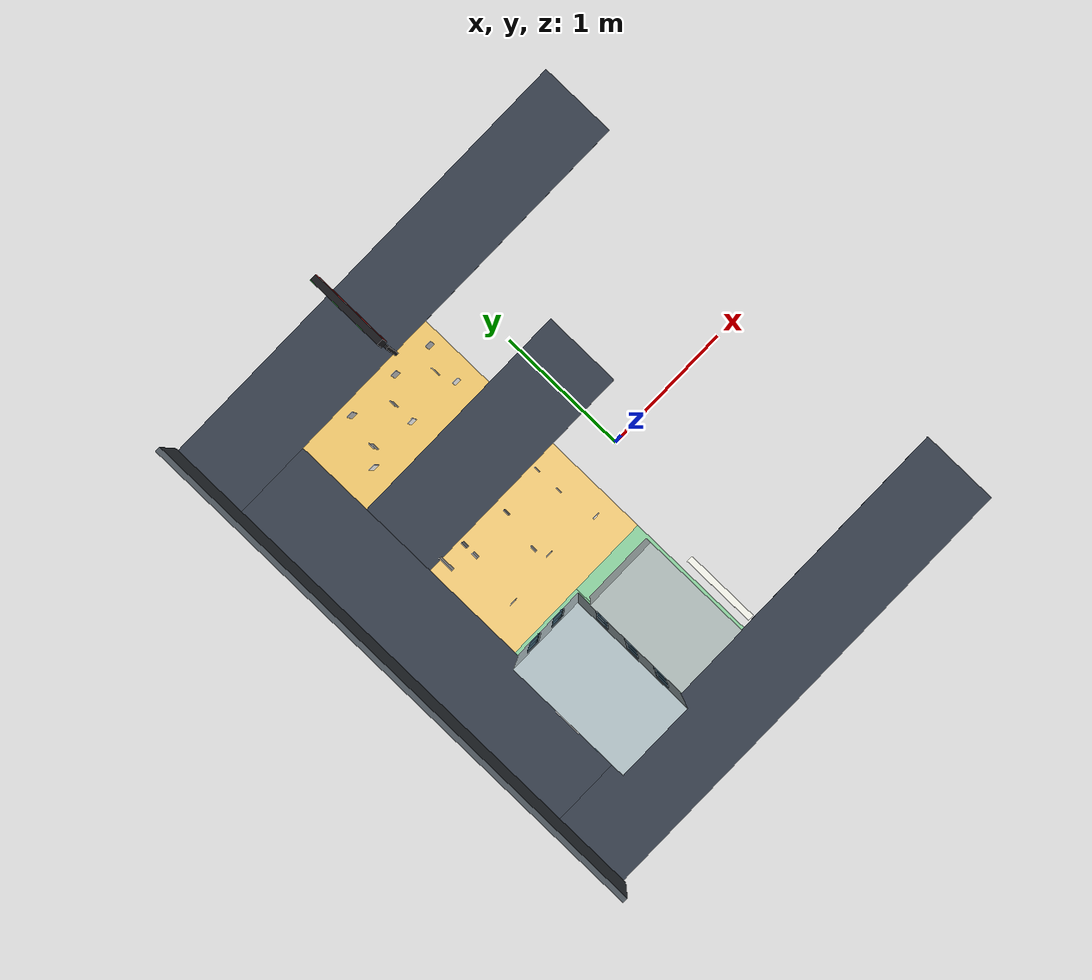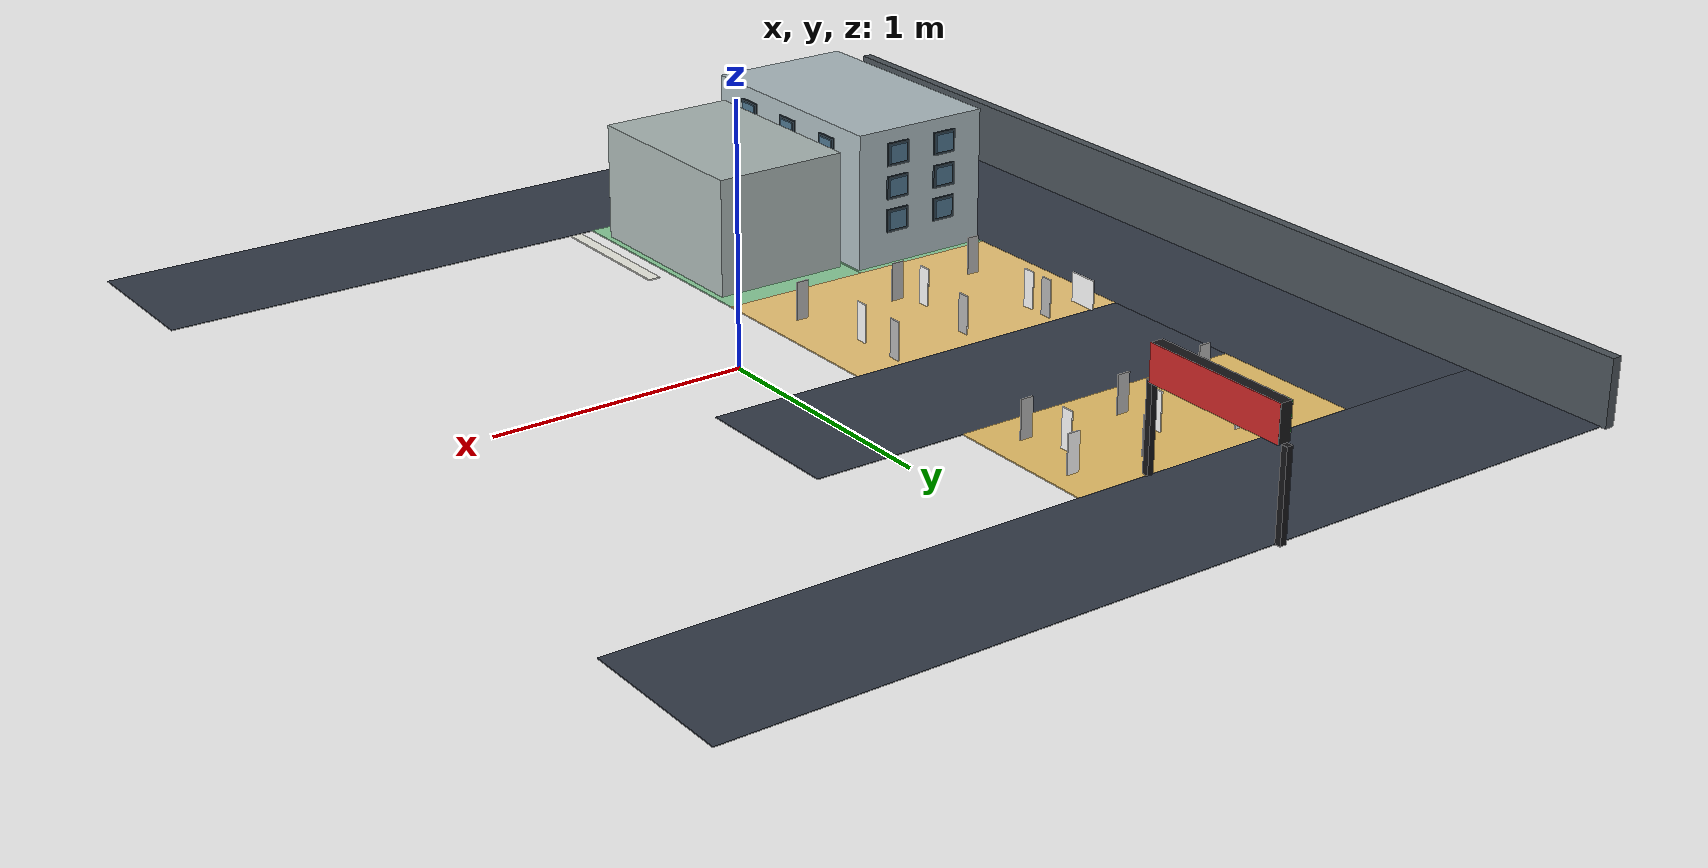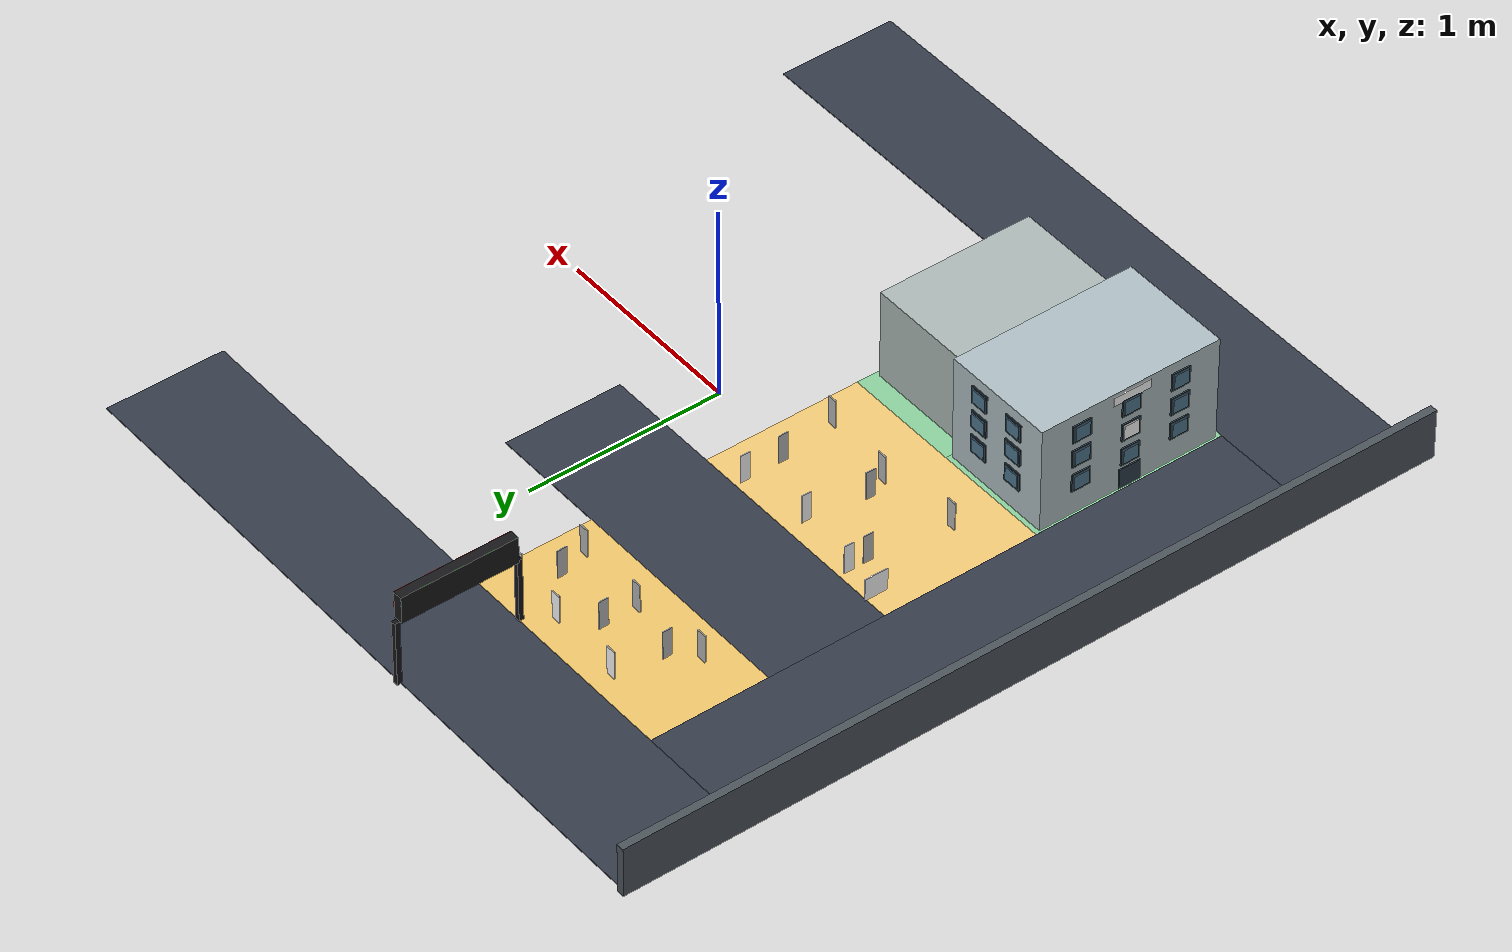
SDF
<sdf version="1.6">
 <world name="sq_community_4p2">
  <include><uri>model://sun</uri></include>
  <model name="sq4_road_top">
   <static>true</static>
   <pose>-0.3000 1.8000 0.0000 0 0 0.00000</pose>
   <link name="surface">
    <visual name="surface_vis">
     <pose>0.0000 0.0000 0.0015 0 0 0.00000</pose>
     <geometry><box><size>3.6000 0.6000 0.0030</size></box></geometry>
     <material>
      <ambient>0.2100 0.2400 0.2900 1.0000</ambient>
      <diffuse>0.2100 0.2400 0.2900 1.0000</diffuse>
     </material>
    </visual>
   </link>
  </model>
  <model name="sq4_road_west">
   <static>true</static>
   <pose>-1.8000 0.0000 0.0000 0 0 0.00000</pose>
   <link name="surface">
    <visual name="surface_vis">
     <pose>0.0000 0.0000 0.0015 0 0 0.00000</pose>
     <geometry><box><size>0.6000 3.0000 0.0030</size></box></geometry>
     <material>
      <ambient>0.2100 0.2400 0.2900 1.0000</ambient>
      <diffuse>0.2100 0.2400 0.2900 1.0000</diffuse>
     </material>
    </visual>
   </link>
  </model>
  <model name="sq4_road_connector">
   <static>true</static>
   <pose>-0.6000 0.6000 0.0000 0 0 0.00000</pose>
   <link name="surface">
    <visual name="surface_vis">
     <pose>0.0000 0.0000 0.0015 0 0 0.00000</pose>
     <geometry><box><size>1.8000 0.6000 0.0030</size></box></geometry>
     <material>
      <ambient>0.2100 0.2400 0.2900 1.0000</ambient>
      <diffuse>0.2100 0.2400 0.2900 1.0000</diffuse>
     </material>
    </visual>
   </link>
  </model>
  <model name="sq4_road_bottom">
   <static>true</static>
   <pose>-0.3000 -1.8000 0.0000 0 0 0.00000</pose>
   <link name="surface">
    <visual name="surface_vis">
     <pose>0.0000 0.0000 0.0015 0 0 0.00000</pose>
     <geometry><box><size>3.6000 0.6000 0.0030</size></box></geometry>
     <material>
      <ambient>0.2100 0.2400 0.2900 1.0000</ambient>
      <diffuse>0.2100 0.2400 0.2900 1.0000</diffuse>
     </material>
    </visual>
   </link>
  </model>
  <model name="sq4_zone_a_people">
   <static>true</static>
   <pose>-0.9000 1.2000 0.0000 0 0 0.00000</pose>
   <link name="surface">
    <visual name="surface_vis">
     <pose>0.0000 0.0000 0.0018 0 0 0.00000</pose>
     <geometry><box><size>1.2000 0.6000 0.0035</size></box></geometry>
     <material>
      <ambient>0.9400 0.7800 0.4200 1.0000</ambient>
      <diffuse>0.9400 0.7800 0.4200 1.0000</diffuse>
     </material>
    </visual>
   </link>
  </model>
  <model name="sq4_zone_b_people">
   <static>true</static>
   <pose>-0.9000 -0.1000 0.0000 0 0 0.00000</pose>
   <link name="surface">
    <visual name="surface_vis">
     <pose>0.0000 0.0000 0.0018 0 0 0.00000</pose>
     <geometry><box><size>1.2000 0.8000 0.0035</size></box></geometry>
     <material>
      <ambient>0.9600 0.8000 0.4700 1.0000</ambient>
      <diffuse>0.9600 0.8000 0.4700 1.0000</diffuse>
     </material>
    </visual>
   </link>
  </model>
  <model name="sq4_zone_building_D">
   <static>true</static>
   <pose>-1.2000 -1.0000 0.0000 0 0 0.00000</pose>
   <link name="surface">
    <visual name="surface_vis">
     <pose>0.0000 0.0000 0.0018 0 0 0.00000</pose>
     <geometry><box><size>0.6000 1.0000 0.0035</size></box></geometry>
     <material>
      <ambient>0.5500 0.8200 0.6200 1.0000</ambient>
      <diffuse>0.5500 0.8200 0.6200 1.0000</diffuse>
     </material>
    </visual>
   </link>
  </model>
  <model name="sq4_zone_station">
   <static>true</static>
   <pose>-0.6000 -1.0000 0.0000 0 0 0.00000</pose>
   <link name="surface">
    <visual name="surface_vis">
     <pose>0.0000 0.0000 0.0018 0 0 0.00000</pose>
     <geometry><box><size>0.6000 1.0000 0.0035</size></box></geometry>
     <material>
      <ambient>0.5500 0.8200 0.6200 1.0000</ambient>
      <diffuse>0.5500 0.8200 0.6200 1.0000</diffuse>
     </material>
    </visual>
   </link>
  </model>
  <model name="sq4_boundary_west">
   <static>true</static>
   <pose>-2.1200 0.0000 0.0000 0 0 0.00000</pose>
   <link name="wall">
    <visual name="wall_vis">
     <pose>0.0000 0.0000 0.1300 0 0 0.00000</pose>
     <geometry><box><size>0.0400 4.2400 0.2600</size></box></geometry>
     <material>
      <ambient>0.3000 0.3300 0.3600 1.0000</ambient>
      <diffuse>0.3000 0.3300 0.3600 1.0000</diffuse>
     </material>
    </visual>
    <collision name="wall_col">
     <pose>0.0000 0.0000 0.1300 0 0 0.00000</pose>
     <geometry><box><size>0.0400 4.2400 0.2600</size></box></geometry>
    </collision>
   </link>
  </model>
  <model name="sq4_crossing_lower_0">
   <static>true</static>
   <pose>-0.2200 -1.2000 0.0000 0 0 0.00000</pose>
   <link name="surface">
    <visual name="surface_vis">
     <pose>0.0000 0.0000 0.0025 0 0 0.00000</pose>
     <geometry><box><size>0.0480 0.5800 0.0050</size></box></geometry>
     <material>
      <ambient>0.9600 0.9600 0.9200 1.0000</ambient>
      <diffuse>0.9600 0.9600 0.9200 1.0000</diffuse>
     </material>
    </visual>
   </link>
  </model>
  <model name="sq4_person_01">
   <static>true</static>
   <pose>-1.25000 1.05000 .004 0 0 1.57079633</pose>
   <link name="panel">
    <visual name="backing">
     <pose>-.0001 0 .075 0 0 0</pose>
     <geometry><box><size>.0048 .05 .15</size></box></geometry>
     <material>
      <lighting>false</lighting>
      <ambient>1 1 1 1</ambient>
      <diffuse>1 1 1 1</diffuse>
      <emissive>1 1 1 1</emissive>
     </material>
    </visual>
    <visual name="portrait">
     <pose>.0024 0 .075 0 0 0</pose>
     <geometry><box><size>.0002 .05 .15</size></box></geometry>
     <material>
      <script>
       <uri>model://sq_competition_assets/materials/scripts</uri>
       <uri>model://sq_competition_assets/materials/textures</uri>
       <name>SQ4_Person_01</name>
      </script>
     </material>
    </visual>
    <collision name="panel_collision">
     <pose>0 0 .075 0 0 0</pose>
     <geometry><box><size>.005 .05 .15</size></box></geometry>
    </collision>
   </link>
  </model>
  <model name="sq4_person_02">
   <static>true</static>
   <pose>-0.85000 1.08000 .004 0 0 1.57079633</pose>
   <link name="panel">
    <visual name="backing">
     <pose>-.0001 0 .075 0 0 0</pose>
     <geometry><box><size>.0048 .05 .15</size></box></geometry>
     <material>
      <lighting>false</lighting>
      <ambient>1 1 1 1</ambient>
      <diffuse>1 1 1 1</diffuse>
      <emissive>1 1 1 1</emissive>
     </material>
    </visual>
    <visual name="portrait">
     <pose>.0024 0 .075 0 0 0</pose>
     <geometry><box><size>.0002 .05 .15</size></box></geometry>
     <material>
      <script>
       <uri>model://sq_competition_assets/materials/scripts</uri>
       <uri>model://sq_competition_assets/materials/textures</uri>
       <name>SQ4_Person_02</name>
      </script>
     </material>
    </visual>
    <collision name="panel_collision">
     <pose>0 0 .075 0 0 0</pose>
     <geometry><box><size>.005 .05 .15</size></box></geometry>
    </collision>
   </link>
  </model>
  <model name="sq4_person_03">
   <static>true</static>
   <pose>-0.45000 1.05000 .004 0 0 1.57079633</pose>
   <link name="panel">
    <visual name="backing">
     <pose>-.0001 0 .075 0 0 0</pose>
     <geometry><box><size>.0048 .05 .15</size></box></geometry>
     <material>
      <lighting>false</lighting>
      <ambient>1 1 1 1</ambient>
      <diffuse>1 1 1 1</diffuse>
      <emissive>1 1 1 1</emissive>
     </material>
    </visual>
    <visual name="portrait">
     <pose>.0024 0 .075 0 0 0</pose>
     <geometry><box><size>.0002 .05 .15</size></box></geometry>
     <material>
      <script>
       <uri>model://sq_competition_assets/materials/scripts</uri>
       <uri>model://sq_competition_assets/materials/textures</uri>
       <name>SQ4_Person_03</name>
      </script>
     </material>
    </visual>
    <collision name="panel_collision">
     <pose>0 0 .075 0 0 0</pose>
     <geometry><box><size>.005 .05 .15</size></box></geometry>
    </collision>
   </link>
  </model>
  <model name="sq4_person_04">
   <static>true</static>
   <pose>-1.10000 1.40000 .004 0 0 4.71238898</pose>
   <link name="panel">
    <visual name="backing">
     <pose>-.0001 0 .075 0 0 0</pose>
     <geometry><box><size>.0048 .05 .15</size></box></geometry>
     <material>
      <lighting>false</lighting>
      <ambient>1 1 1 1</ambient>
      <diffuse>1 1 1 1</diffuse>
      <emissive>1 1 1 1</emissive>
     </material>
    </visual>
    <visual name="portrait">
     <pose>.0024 0 .075 0 0 0</pose>
     <geometry><box><size>.0002 .05 .15</size></box></geometry>
     <material>
      <script>
       <uri>model://sq_competition_assets/materials/scripts</uri>
       <uri>model://sq_competition_assets/materials/textures</uri>
       <name>SQ4_Person_04</name>
      </script>
     </material>
    </visual>
    <collision name="panel_collision">
     <pose>0 0 .075 0 0 0</pose>
     <geometry><box><size>.005 .05 .15</size></box></geometry>
    </collision>
   </link>
  </model>
  <model name="sq4_person_05">
   <static>true</static>
   <pose>-0.70000 1.38000 .004 0 0 4.71238898</pose>
   <link name="panel">
    <visual name="backing">
     <pose>-.0001 0 .075 0 0 0</pose>
     <geometry><box><size>.0048 .05 .15</size></box></geometry>
     <material>
      <lighting>false</lighting>
      <ambient>1 1 1 1</ambient>
      <diffuse>1 1 1 1</diffuse>
      <emissive>1 1 1 1</emissive>
     </material>
    </visual>
    <visual name="portrait">
     <pose>.0024 0 .075 0 0 0</pose>
     <geometry><box><size>.0002 .05 .15</size></box></geometry>
     <material>
      <script>
       <uri>model://sq_competition_assets/materials/scripts</uri>
       <uri>model://sq_competition_assets/materials/textures</uri>
       <name>SQ4_Person_05</name>
      </script>
     </material>
    </visual>
    <collision name="panel_collision">
     <pose>0 0 .075 0 0 0</pose>
     <geometry><box><size>.005 .05 .15</size></box></geometry>
    </collision>
   </link>
  </model>
  <model name="sq4_person_06">
   <static>true</static>
   <pose>-0.40000 1.35000 .004 0 0 4.71238898</pose>
   <link name="panel">
    <visual name="backing">
     <pose>-.0001 0 .075 0 0 0</pose>
     <geometry><box><size>.0048 .05 .15</size></box></geometry>
     <material>
      <lighting>false</lighting>
      <ambient>1 1 1 1</ambient>
      <diffuse>1 1 1 1</diffuse>
      <emissive>1 1 1 1</emissive>
     </material>
    </visual>
    <visual name="portrait">
     <pose>.0024 0 .075 0 0 0</pose>
     <geometry><box><size>.0002 .05 .15</size></box></geometry>
     <material>
      <script>
       <uri>model://sq_competition_assets/materials/scripts</uri>
       <uri>model://sq_competition_assets/materials/textures</uri>
       <name>SQ4_Person_06</name>
      </script>
     </material>
    </visual>
    <collision name="panel_collision">
     <pose>0 0 .075 0 0 0</pose>
     <geometry><box><size>.005 .05 .15</size></box></geometry>
    </collision>
   </link>
  </model>
  <model name="sq4_person_07">
   <static>true</static>
   <pose>-1.15000 1.15000 .004 0 0 3.14159265</pose>
   <link name="panel">
    <visual name="backing">
     <pose>-.0001 0 .075 0 0 0</pose>
     <geometry><box><size>.0048 .05 .15</size></box></geometry>
     <material>
      <lighting>false</lighting>
      <ambient>1 1 1 1</ambient>
      <diffuse>1 1 1 1</diffuse>
      <emissive>1 1 1 1</emissive>
     </material>
    </visual>
    <visual name="portrait">
     <pose>.0024 0 .075 0 0 0</pose>
     <geometry><box><size>.0002 .05 .15</size></box></geometry>
     <material>
      <script>
       <uri>model://sq_competition_assets/materials/scripts</uri>
       <uri>model://sq_competition_assets/materials/textures</uri>
       <name>SQ4_Person_07</name>
      </script>
     </material>
    </visual>
    <collision name="panel_collision">
     <pose>0 0 .075 0 0 0</pose>
     <geometry><box><size>.005 .05 .15</size></box></geometry>
    </collision>
   </link>
  </model>
  <model name="sq4_person_08">
   <static>true</static>
   <pose>-0.85000 1.25000 .004 0 0 3.14159265</pose>
   <link name="panel">
    <visual name="backing">
     <pose>-.0001 0 .075 0 0 0</pose>
     <geometry><box><size>.0048 .05 .15</size></box></geometry>
     <material>
      <lighting>false</lighting>
      <ambient>1 1 1 1</ambient>
      <diffuse>1 1 1 1</diffuse>
      <emissive>1 1 1 1</emissive>
     </material>
    </visual>
    <visual name="portrait">
     <pose>.0024 0 .075 0 0 0</pose>
     <geometry><box><size>.0002 .05 .15</size></box></geometry>
     <material>
      <script>
       <uri>model://sq_competition_assets/materials/scripts</uri>
       <uri>model://sq_competition_assets/materials/textures</uri>
       <name>SQ4_Person_08</name>
      </script>
     </material>
    </visual>
    <collision name="panel_collision">
     <pose>0 0 .075 0 0 0</pose>
     <geometry><box><size>.005 .05 .15</size></box></geometry>
    </collision>
   </link>
  </model>
  <model name="sq4_person_09">
   <static>true</static>
   <pose>-0.50000 1.20000 .004 0 0 3.14159265</pose>
   <link name="panel">
    <visual name="backing">
     <pose>-.0001 0 .075 0 0 0</pose>
     <geometry><box><size>.0048 .05 .15</size></box></geometry>
     <material>
      <lighting>false</lighting>
      <ambient>1 1 1 1</ambient>
      <diffuse>1 1 1 1</diffuse>
      <emissive>1 1 1 1</emissive>
     </material>
    </visual>
    <visual name="portrait">
     <pose>.0024 0 .075 0 0 0</pose>
     <geometry><box><size>.0002 .05 .15</size></box></geometry>
     <material>
      <script>
       <uri>model://sq_competition_assets/materials/scripts</uri>
       <uri>model://sq_competition_assets/materials/textures</uri>
       <name>SQ4_Person_09</name>
      </script>
     </material>
    </visual>
    <collision name="panel_collision">
     <pose>0 0 .075 0 0 0</pose>
     <geometry><box><size>.005 .05 .15</size></box></geometry>
    </collision>
   </link>
  </model>
  <model name="sq4_person_10">
   <static>true</static>
   <pose>-1.25000 -0.25000 .004 0 0 1.57079633</pose>
   <link name="panel">
    <visual name="backing">
     <pose>-.0001 0 .075 0 0 0</pose>
     <geometry><box><size>.0048 .05 .15</size></box></geometry>
     <material>
      <lighting>false</lighting>
      <ambient>1 1 1 1</ambient>
      <diffuse>1 1 1 1</diffuse>
      <emissive>1 1 1 1</emissive>
     </material>
    </visual>
    <visual name="portrait">
     <pose>.0024 0 .075 0 0 0</pose>
     <geometry><box><size>.0002 .05 .15</size></box></geometry>
     <material>
      <script>
       <uri>model://sq_competition_assets/materials/scripts</uri>
       <uri>model://sq_competition_assets/materials/textures</uri>
       <name>SQ4_Person_10</name>
      </script>
     </material>
    </visual>
    <collision name="panel_collision">
     <pose>0 0 .075 0 0 0</pose>
     <geometry><box><size>.005 .05 .15</size></box></geometry>
    </collision>
   </link>
  </model>
  <model name="sq4_person_11">
   <static>true</static>
   <pose>-0.85000 -0.20000 .004 0 0 1.57079633</pose>
   <link name="panel">
    <visual name="backing">
     <pose>-.0001 0 .075 0 0 0</pose>
     <geometry><box><size>.0048 .05 .15</size></box></geometry>
     <material>
      <lighting>false</lighting>
      <ambient>1 1 1 1</ambient>
      <diffuse>1 1 1 1</diffuse>
      <emissive>1 1 1 1</emissive>
     </material>
    </visual>
    <visual name="portrait">
     <pose>.0024 0 .075 0 0 0</pose>
     <geometry><box><size>.0002 .05 .15</size></box></geometry>
     <material>
      <script>
       <uri>model://sq_competition_assets/materials/scripts</uri>
       <uri>model://sq_competition_assets/materials/textures</uri>
       <name>SQ4_Person_11</name>
      </script>
     </material>
    </visual>
    <collision name="panel_collision">
     <pose>0 0 .075 0 0 0</pose>
     <geometry><box><size>.005 .05 .15</size></box></geometry>
    </collision>
   </link>
  </model>
  <model name="sq4_person_12">
   <static>true</static>
   <pose>-0.45000 -0.25000 .004 0 0 1.57079633</pose>
   <link name="panel">
    <visual name="backing">
     <pose>-.0001 0 .075 0 0 0</pose>
     <geometry><box><size>.0048 .05 .15</size></box></geometry>
     <material>
      <lighting>false</lighting>
      <ambient>1 1 1 1</ambient>
      <diffuse>1 1 1 1</diffuse>
      <emissive>1 1 1 1</emissive>
     </material>
    </visual>
    <visual name="portrait">
     <pose>.0024 0 .075 0 0 0</pose>
     <geometry><box><size>.0002 .05 .15</size></box></geometry>
     <material>
      <script>
       <uri>model://sq_competition_assets/materials/scripts</uri>
       <uri>model://sq_competition_assets/materials/textures</uri>
       <name>SQ4_Person_12</name>
      </script>
     </material>
    </visual>
    <collision name="panel_collision">
     <pose>0 0 .075 0 0 0</pose>
     <geometry><box><size>.005 .05 .15</size></box></geometry>
    </collision>
   </link>
  </model>
  <model name="sq4_person_13">
   <static>true</static>
   <pose>-1.20000 0.15000 .004 0 0 3.14159265</pose>
   <link name="panel">
    <visual name="backing">
     <pose>-.0001 0 .075 0 0 0</pose>
     <geometry><box><size>.0048 .05 .15</size></box></geometry>
     <material>
      <lighting>false</lighting>
      <ambient>1 1 1 1</ambient>
      <diffuse>1 1 1 1</diffuse>
      <emissive>1 1 1 1</emissive>
     </material>
    </visual>
    <visual name="portrait">
     <pose>.0024 0 .075 0 0 0</pose>
     <geometry><box><size>.0002 .05 .15</size></box></geometry>
     <material>
      <script>
       <uri>model://sq_competition_assets/materials/scripts</uri>
       <uri>model://sq_competition_assets/materials/textures</uri>
       <name>SQ4_Person_13</name>
      </script>
     </material>
    </visual>
    <collision name="panel_collision">
     <pose>0 0 .075 0 0 0</pose>
     <geometry><box><size>.005 .05 .15</size></box></geometry>
    </collision>
   </link>
  </model>
  <model name="sq4_person_14">
   <static>true</static>
   <pose>-0.90000 -0.10000 .004 0 0 3.14159265</pose>
   <link name="panel">
    <visual name="backing">
     <pose>-.0001 0 .075 0 0 0</pose>
     <geometry><box><size>.0048 .05 .15</size></box></geometry>
     <material>
      <lighting>false</lighting>
      <ambient>1 1 1 1</ambient>
      <diffuse>1 1 1 1</diffuse>
      <emissive>1 1 1 1</emissive>
     </material>
    </visual>
    <visual name="portrait">
     <pose>.0024 0 .075 0 0 0</pose>
     <geometry><box><size>.0002 .05 .15</size></box></geometry>
     <material>
      <script>
       <uri>model://sq_competition_assets/materials/scripts</uri>
       <uri>model://sq_competition_assets/materials/textures</uri>
       <name>SQ4_Person_14</name>
      </script>
     </material>
    </visual>
    <collision name="panel_collision">
     <pose>0 0 .075 0 0 0</pose>
     <geometry><box><size>.005 .05 .15</size></box></geometry>
    </collision>
   </link>
  </model>
  <model name="sq4_person_15">
   <static>true</static>
   <pose>-0.50000 0.05000 .004 0 0 3.14159265</pose>
   <link name="panel">
    <visual name="backing">
     <pose>-.0001 0 .075 0 0 0</pose>
     <geometry><box><size>.0048 .05 .15</size></box></geometry>
     <material>
      <lighting>false</lighting>
      <ambient>1 1 1 1</ambient>
      <diffuse>1 1 1 1</diffuse>
      <emissive>1 1 1 1</emissive>
     </material>
    </visual>
    <visual name="portrait">
     <pose>.0024 0 .075 0 0 0</pose>
     <geometry><box><size>.0002 .05 .15</size></box></geometry>
     <material>
      <script>
       <uri>model://sq_competition_assets/materials/scripts</uri>
       <uri>model://sq_competition_assets/materials/textures</uri>
       <name>SQ4_Person_15</name>
      </script>
     </material>
    </visual>
    <collision name="panel_collision">
     <pose>0 0 .075 0 0 0</pose>
     <geometry><box><size>.005 .05 .15</size></box></geometry>
    </collision>
   </link>
  </model>
  <model name="sq4_person_16">
   <static>true</static>
   <pose>-1.20000 0.25000 .004 0 0 0.00000000</pose>
   <link name="panel">
    <visual name="backing">
     <pose>-.0001 0 .075 0 0 0</pose>
     <geometry><box><size>.0048 .05 .15</size></box></geometry>
     <material>
      <lighting>false</lighting>
      <ambient>1 1 1 1</ambient>
      <diffuse>1 1 1 1</diffuse>
      <emissive>1 1 1 1</emissive>
     </material>
    </visual>
    <visual name="portrait">
     <pose>.0024 0 .075 0 0 0</pose>
     <geometry><box><size>.0002 .05 .15</size></box></geometry>
     <material>
      <script>
       <uri>model://sq_competition_assets/materials/scripts</uri>
       <uri>model://sq_competition_assets/materials/textures</uri>
       <name>SQ4_Person_16</name>
      </script>
     </material>
    </visual>
    <collision name="panel_collision">
     <pose>0 0 .075 0 0 0</pose>
     <geometry><box><size>.005 .05 .15</size></box></geometry>
    </collision>
   </link>
  </model>
  <model name="sq4_person_17">
   <static>true</static>
   <pose>-0.85000 0.20000 .004 0 0 0.00000000</pose>
   <link name="panel">
    <visual name="backing">
     <pose>-.0001 0 .075 0 0 0</pose>
     <geometry><box><size>.0048 .05 .15</size></box></geometry>
     <material>
      <lighting>false</lighting>
      <ambient>1 1 1 1</ambient>
      <diffuse>1 1 1 1</diffuse>
      <emissive>1 1 1 1</emissive>
     </material>
    </visual>
    <visual name="portrait">
     <pose>.0024 0 .075 0 0 0</pose>
     <geometry><box><size>.0002 .05 .15</size></box></geometry>
     <material>
      <script>
       <uri>model://sq_competition_assets/materials/scripts</uri>
       <uri>model://sq_competition_assets/materials/textures</uri>
       <name>SQ4_Person_17</name>
      </script>
     </material>
    </visual>
    <collision name="panel_collision">
     <pose>0 0 .075 0 0 0</pose>
     <geometry><box><size>.005 .05 .15</size></box></geometry>
    </collision>
   </link>
  </model>
  <model name="sq4_person_18">
   <static>true</static>
   <pose>-0.50000 0.25000 .004 0 0 0.00000000</pose>
   <link name="panel">
    <visual name="backing">
     <pose>-.0001 0 .075 0 0 0</pose>
     <geometry><box><size>.0048 .05 .15</size></box></geometry>
     <material>
      <lighting>false</lighting>
      <ambient>1 1 1 1</ambient>
      <diffuse>1 1 1 1</diffuse>
      <emissive>1 1 1 1</emissive>
     </material>
    </visual>
    <visual name="portrait">
     <pose>.0024 0 .075 0 0 0</pose>
     <geometry><box><size>.0002 .05 .15</size></box></geometry>
     <material>
      <script>
       <uri>model://sq_competition_assets/materials/scripts</uri>
       <uri>model://sq_competition_assets/materials/textures</uri>
       <name>SQ4_Person_18</name>
      </script>
     </material>
    </visual>
    <collision name="panel_collision">
     <pose>0 0 .075 0 0 0</pose>
     <geometry><box><size>.005 .05 .15</size></box></geometry>
    </collision>
   </link>
  </model>
  <model name="sq4_building_D">
   <static>true</static>
   <pose>-1.2000 -1.0000 0.0000 0 0 0.00000</pose>
   <link name="structure">
    <visual name="structure_vis">
     <pose>0.0000 0.0000 0.2750 0 0 0.00000</pose>
     <geometry><box><size>0.5800 0.9500 0.5500</size></box></geometry>
     <material>
      <ambient>0.6900 0.7500 0.7700 1.0000</ambient>
      <diffuse>0.6900 0.7500 0.7700 1.0000</diffuse>
     </material>
    </visual>
    <collision name="structure_col">
     <pose>0.0000 0.0000 0.2750 0 0 0.00000</pose>
     <geometry><box><size>0.5800 0.9500 0.5500</size></box></geometry>
    </collision>
   </link>
   <link name="nameplate">
    <visual name="nameplate_vis">
     <pose>-0.2960 0.0000 0.5150 0 0 0.00000</pose>
     <geometry><box><size>0.0050 0.2000 0.0450</size></box></geometry>
     <material>
      <script>
       <uri>model://sq_textures/materials/scripts</uri>
       <uri>model://sq_textures/materials/textures</uri>
       <name>SQ_bldg_D</name>
      </script>
      <ambient>1 1 1 1</ambient>
      <diffuse>1 1 1 1</diffuse>
     </material>
    </visual>
   </link>
   <link name="entry_door">
    <visual name="entry_door_vis">
     <pose>-0.2960 0.0000 0.0630 0 0 0.00000</pose>
     <geometry><box><size>0.0060 0.1150 0.1050</size></box></geometry>
     <material>
      <ambient>0.1600 0.2300 0.2800 1.0000</ambient>
      <diffuse>0.1600 0.2300 0.2800 1.0000</diffuse>
     </material>
    </visual>
   </link>
   <link name="window_f1_c1_frame">
    <visual name="window_f1_c1_frame_vis">
     <pose>-0.2950 -0.2639 0.1800 0 0 0.00000</pose>
     <geometry><box><size>0.0070 0.1000 0.0930</size></box></geometry>
     <material>
      <ambient>0.1800 0.2400 0.2800 1.0000</ambient>
      <diffuse>0.1800 0.2400 0.2800 1.0000</diffuse>
     </material>
    </visual>
   </link>
   <link name="window_f1_c1_glass">
    <visual name="window_f1_c1_glass_vis">
     <pose>-0.2990 -0.2639 0.1800 0 0 0.00000</pose>
     <geometry><box><size>0.0070 0.0780 0.0720</size></box></geometry>
     <material>
      <ambient>0.3100 0.4700 0.5700 1.0000</ambient>
      <diffuse>0.3100 0.4700 0.5700 1.0000</diffuse>
     </material>
    </visual>
   </link>
   <link name="window_f1_c2_frame">
    <visual name="window_f1_c2_frame_vis">
     <pose>-0.2950 0.0000 0.1800 0 0 0.00000</pose>
     <geometry><box><size>0.0070 0.1000 0.0930</size></box></geometry>
     <material>
      <ambient>0.1800 0.2400 0.2800 1.0000</ambient>
      <diffuse>0.1800 0.2400 0.2800 1.0000</diffuse>
     </material>
    </visual>
   </link>
   <link name="window_f1_c2_glass">
    <visual name="window_f1_c2_glass_vis">
     <pose>-0.2990 0.0000 0.1800 0 0 0.00000</pose>
     <geometry><box><size>0.0070 0.0780 0.0720</size></box></geometry>
     <material>
      <ambient>0.3100 0.4700 0.5700 1.0000</ambient>
      <diffuse>0.3100 0.4700 0.5700 1.0000</diffuse>
     </material>
    </visual>
   </link>
   <link name="window_f1_c3_frame">
    <visual name="window_f1_c3_frame_vis">
     <pose>-0.2950 0.2639 0.1800 0 0 0.00000</pose>
     <geometry><box><size>0.0070 0.1000 0.0930</size></box></geometry>
     <material>
      <ambient>0.1800 0.2400 0.2800 1.0000</ambient>
      <diffuse>0.1800 0.2400 0.2800 1.0000</diffuse>
     </material>
    </visual>
   </link>
   <link name="window_f1_c3_glass">
    <visual name="window_f1_c3_glass_vis">
     <pose>-0.2990 0.2639 0.1800 0 0 0.00000</pose>
     <geometry><box><size>0.0070 0.0780 0.0720</size></box></geometry>
     <material>
      <ambient>0.3100 0.4700 0.5700 1.0000</ambient>
      <diffuse>0.3100 0.4700 0.5700 1.0000</diffuse>
     </material>
    </visual>
   </link>
   <link name="window_f2_c1_frame">
    <visual name="window_f2_c1_frame_vis">
     <pose>-0.2950 -0.2639 0.3150 0 0 0.00000</pose>
     <geometry><box><size>0.0070 0.1000 0.0930</size></box></geometry>
     <material>
      <ambient>0.1800 0.2400 0.2800 1.0000</ambient>
      <diffuse>0.1800 0.2400 0.2800 1.0000</diffuse>
     </material>
    </visual>
   </link>
   <link name="window_f2_c1_glass">
    <visual name="window_f2_c1_glass_vis">
     <pose>-0.2990 -0.2639 0.3150 0 0 0.00000</pose>
     <geometry><box><size>0.0070 0.0780 0.0720</size></box></geometry>
     <material>
      <ambient>0.3100 0.4700 0.5700 1.0000</ambient>
      <diffuse>0.3100 0.4700 0.5700 1.0000</diffuse>
     </material>
    </visual>
   </link>
   <link name="window_f2_c2_frame">
    <visual name="window_f2_c2_frame_vis">
     <pose>-0.2950 0.0000 0.3150 0 0 0.00000</pose>
     <geometry><box><size>0.0070 0.1000 0.0930</size></box></geometry>
     <material>
      <ambient>0.1800 0.2400 0.2800 1.0000</ambient>
      <diffuse>0.1800 0.2400 0.2800 1.0000</diffuse>
     </material>
    </visual>
   </link>
   <link name="window_f2_c2_glass">
    <visual name="window_f2_c2_glass_vis">
     <pose>-0.2990 0.0000 0.3150 0 0 0.00000</pose>
     <geometry><box><size>0.0070 0.0780 0.0720</size></box></geometry>
     <material>
      <script>
       <uri>model://sq_textures/materials/scripts</uri>
       <uri>model://sq_textures/materials/textures</uri>
       <name>SQ_win_hot</name>
      </script>
      <ambient>1 1 1 1</ambient>
      <diffuse>1 1 1 1</diffuse>
     </material>
    </visual>
   </link>
   <link name="window_f2_c3_frame">
    <visual name="window_f2_c3_frame_vis">
     <pose>-0.2950 0.2639 0.3150 0 0 0.00000</pose>
     <geometry><box><size>0.0070 0.1000 0.0930</size></box></geometry>
     <material>
      <ambient>0.1800 0.2400 0.2800 1.0000</ambient>
      <diffuse>0.1800 0.2400 0.2800 1.0000</diffuse>
     </material>
    </visual>
   </link>
   <link name="window_f2_c3_glass">
    <visual name="window_f2_c3_glass_vis">
     <pose>-0.2990 0.2639 0.3150 0 0 0.00000</pose>
     <geometry><box><size>0.0070 0.0780 0.0720</size></box></geometry>
     <material>
      <ambient>0.3100 0.4700 0.5700 1.0000</ambient>
      <diffuse>0.3100 0.4700 0.5700 1.0000</diffuse>
     </material>
    </visual>
   </link>
   <link name="window_f3_c1_frame">
    <visual name="window_f3_c1_frame_vis">
     <pose>-0.2950 -0.2639 0.4500 0 0 0.00000</pose>
     <geometry><box><size>0.0070 0.1000 0.0930</size></box></geometry>
     <material>
      <ambient>0.1800 0.2400 0.2800 1.0000</ambient>
      <diffuse>0.1800 0.2400 0.2800 1.0000</diffuse>
     </material>
    </visual>
   </link>
   <link name="window_f3_c1_glass">
    <visual name="window_f3_c1_glass_vis">
     <pose>-0.2990 -0.2639 0.4500 0 0 0.00000</pose>
     <geometry><box><size>0.0070 0.0780 0.0720</size></box></geometry>
     <material>
      <ambient>0.3100 0.4700 0.5700 1.0000</ambient>
      <diffuse>0.3100 0.4700 0.5700 1.0000</diffuse>
     </material>
    </visual>
   </link>
   <link name="window_f3_c2_frame">
    <visual name="window_f3_c2_frame_vis">
     <pose>-0.2950 0.0000 0.4500 0 0 0.00000</pose>
     <geometry><box><size>0.0070 0.1000 0.0930</size></box></geometry>
     <material>
      <ambient>0.1800 0.2400 0.2800 1.0000</ambient>
      <diffuse>0.1800 0.2400 0.2800 1.0000</diffuse>
     </material>
    </visual>
   </link>
   <link name="window_f3_c2_glass">
    <visual name="window_f3_c2_glass_vis">
     <pose>-0.2990 0.0000 0.4500 0 0 0.00000</pose>
     <geometry><box><size>0.0070 0.0780 0.0720</size></box></geometry>
     <material>
      <ambient>0.3100 0.4700 0.5700 1.0000</ambient>
      <diffuse>0.3100 0.4700 0.5700 1.0000</diffuse>
     </material>
    </visual>
   </link>
   <link name="window_f3_c3_frame">
    <visual name="window_f3_c3_frame_vis">
     <pose>-0.2950 0.2639 0.4500 0 0 0.00000</pose>
     <geometry><box><size>0.0070 0.1000 0.0930</size></box></geometry>
     <material>
      <ambient>0.1800 0.2400 0.2800 1.0000</ambient>
      <diffuse>0.1800 0.2400 0.2800 1.0000</diffuse>
     </material>
    </visual>
   </link>
   <link name="window_f3_c3_glass">
    <visual name="window_f3_c3_glass_vis">
     <pose>-0.2990 0.2639 0.4500 0 0 0.00000</pose>
     <geometry><box><size>0.0070 0.0780 0.0720</size></box></geometry>
     <material>
      <ambient>0.3100 0.4700 0.5700 1.0000</ambient>
      <diffuse>0.3100 0.4700 0.5700 1.0000</diffuse>
     </material>
    </visual>
   </link>
   <link name="side_north_f1_c1_frame">
    <visual name="side_north_f1_c1_frame_vis">
     <pose>-0.1115 0.4800 0.1800 0 0 0.00000</pose>
     <geometry><box><size>0.1000 0.0070 0.0930</size></box></geometry>
     <material>
      <ambient>0.1800 0.2400 0.2800 1.0000</ambient>
      <diffuse>0.1800 0.2400 0.2800 1.0000</diffuse>
     </material>
    </visual>
   </link>
   <link name="side_north_f1_c1_glass">
    <visual name="side_north_f1_c1_glass_vis">
     <pose>-0.1115 0.4840 0.1800 0 0 0.00000</pose>
     <geometry><box><size>0.0780 0.0070 0.0720</size></box></geometry>
     <material>
      <ambient>0.3100 0.4700 0.5700 1.0000</ambient>
      <diffuse>0.3100 0.4700 0.5700 1.0000</diffuse>
     </material>
    </visual>
   </link>
   <link name="side_north_f1_c2_frame">
    <visual name="side_north_f1_c2_frame_vis">
     <pose>0.1115 0.4800 0.1800 0 0 0.00000</pose>
     <geometry><box><size>0.1000 0.0070 0.0930</size></box></geometry>
     <material>
      <ambient>0.1800 0.2400 0.2800 1.0000</ambient>
      <diffuse>0.1800 0.2400 0.2800 1.0000</diffuse>
     </material>
    </visual>
   </link>
   <link name="side_north_f1_c2_glass">
    <visual name="side_north_f1_c2_glass_vis">
     <pose>0.1115 0.4840 0.1800 0 0 0.00000</pose>
     <geometry><box><size>0.0780 0.0070 0.0720</size></box></geometry>
     <material>
      <ambient>0.3100 0.4700 0.5700 1.0000</ambient>
      <diffuse>0.3100 0.4700 0.5700 1.0000</diffuse>
     </material>
    </visual>
   </link>
   <link name="side_north_f2_c1_frame">
    <visual name="side_north_f2_c1_frame_vis">
     <pose>-0.1115 0.4800 0.3150 0 0 0.00000</pose>
     <geometry><box><size>0.1000 0.0070 0.0930</size></box></geometry>
     <material>
      <ambient>0.1800 0.2400 0.2800 1.0000</ambient>
      <diffuse>0.1800 0.2400 0.2800 1.0000</diffuse>
     </material>
    </visual>
   </link>
   <link name="side_north_f2_c1_glass">
    <visual name="side_north_f2_c1_glass_vis">
     <pose>-0.1115 0.4840 0.3150 0 0 0.00000</pose>
     <geometry><box><size>0.0780 0.0070 0.0720</size></box></geometry>
     <material>
      <ambient>0.3100 0.4700 0.5700 1.0000</ambient>
      <diffuse>0.3100 0.4700 0.5700 1.0000</diffuse>
     </material>
    </visual>
   </link>
   <link name="side_north_f2_c2_frame">
    <visual name="side_north_f2_c2_frame_vis">
     <pose>0.1115 0.4800 0.3150 0 0 0.00000</pose>
     <geometry><box><size>0.1000 0.0070 0.0930</size></box></geometry>
     <material>
      <ambient>0.1800 0.2400 0.2800 1.0000</ambient>
      <diffuse>0.1800 0.2400 0.2800 1.0000</diffuse>
     </material>
    </visual>
   </link>
   <link name="side_north_f2_c2_glass">
    <visual name="side_north_f2_c2_glass_vis">
     <pose>0.1115 0.4840 0.3150 0 0 0.00000</pose>
     <geometry><box><size>0.0780 0.0070 0.0720</size></box></geometry>
     <material>
      <ambient>0.3100 0.4700 0.5700 1.0000</ambient>
      <diffuse>0.3100 0.4700 0.5700 1.0000</diffuse>
     </material>
    </visual>
   </link>
   <link name="side_north_f3_c1_frame">
    <visual name="side_north_f3_c1_frame_vis">
     <pose>-0.1115 0.4800 0.4500 0 0 0.00000</pose>
     <geometry><box><size>0.1000 0.0070 0.0930</size></box></geometry>
     <material>
      <ambient>0.1800 0.2400 0.2800 1.0000</ambient>
      <diffuse>0.1800 0.2400 0.2800 1.0000</diffuse>
     </material>
    </visual>
   </link>
   <link name="side_north_f3_c1_glass">
    <visual name="side_north_f3_c1_glass_vis">
     <pose>-0.1115 0.4840 0.4500 0 0 0.00000</pose>
     <geometry><box><size>0.0780 0.0070 0.0720</size></box></geometry>
     <material>
      <ambient>0.3100 0.4700 0.5700 1.0000</ambient>
      <diffuse>0.3100 0.4700 0.5700 1.0000</diffuse>
     </material>
    </visual>
   </link>
   <link name="side_north_f3_c2_frame">
    <visual name="side_north_f3_c2_frame_vis">
     <pose>0.1115 0.4800 0.4500 0 0 0.00000</pose>
     <geometry><box><size>0.1000 0.0070 0.0930</size></box></geometry>
     <material>
      <ambient>0.1800 0.2400 0.2800 1.0000</ambient>
      <diffuse>0.1800 0.2400 0.2800 1.0000</diffuse>
     </material>
    </visual>
   </link>
   <link name="side_north_f3_c2_glass">
    <visual name="side_north_f3_c2_glass_vis">
     <pose>0.1115 0.4840 0.4500 0 0 0.00000</pose>
     <geometry><box><size>0.0780 0.0070 0.0720</size></box></geometry>
     <material>
      <ambient>0.3100 0.4700 0.5700 1.0000</ambient>
      <diffuse>0.3100 0.4700 0.5700 1.0000</diffuse>
     </material>
    </visual>
   </link>
   <link name="side_south_f1_c1_frame">
    <visual name="side_south_f1_c1_frame_vis">
     <pose>-0.1115 -0.4800 0.1800 0 0 0.00000</pose>
     <geometry><box><size>0.1000 0.0070 0.0930</size></box></geometry>
     <material>
      <ambient>0.1800 0.2400 0.2800 1.0000</ambient>
      <diffuse>0.1800 0.2400 0.2800 1.0000</diffuse>
     </material>
    </visual>
   </link>
   <link name="side_south_f1_c1_glass">
    <visual name="side_south_f1_c1_glass_vis">
     <pose>-0.1115 -0.4840 0.1800 0 0 0.00000</pose>
     <geometry><box><size>0.0780 0.0070 0.0720</size></box></geometry>
     <material>
      <ambient>0.3100 0.4700 0.5700 1.0000</ambient>
      <diffuse>0.3100 0.4700 0.5700 1.0000</diffuse>
     </material>
    </visual>
   </link>
   <link name="side_south_f1_c2_frame">
    <visual name="side_south_f1_c2_frame_vis">
     <pose>0.1115 -0.4800 0.1800 0 0 0.00000</pose>
     <geometry><box><size>0.1000 0.0070 0.0930</size></box></geometry>
     <material>
      <ambient>0.1800 0.2400 0.2800 1.0000</ambient>
      <diffuse>0.1800 0.2400 0.2800 1.0000</diffuse>
     </material>
    </visual>
   </link>
   <link name="side_south_f1_c2_glass">
    <visual name="side_south_f1_c2_glass_vis">
     <pose>0.1115 -0.4840 0.1800 0 0 0.00000</pose>
     <geometry><box><size>0.0780 0.0070 0.0720</size></box></geometry>
     <material>
      <ambient>0.3100 0.4700 0.5700 1.0000</ambient>
      <diffuse>0.3100 0.4700 0.5700 1.0000</diffuse>
     </material>
    </visual>
   </link>
   <link name="side_south_f2_c1_frame">
    <visual name="side_south_f2_c1_frame_vis">
     <pose>-0.1115 -0.4800 0.3150 0 0 0.00000</pose>
     <geometry><box><size>0.1000 0.0070 0.0930</size></box></geometry>
     <material>
      <ambient>0.1800 0.2400 0.2800 1.0000</ambient>
      <diffuse>0.1800 0.2400 0.2800 1.0000</diffuse>
     </material>
    </visual>
   </link>
   <link name="side_south_f2_c1_glass">
    <visual name="side_south_f2_c1_glass_vis">
     <pose>-0.1115 -0.4840 0.3150 0 0 0.00000</pose>
     <geometry><box><size>0.0780 0.0070 0.0720</size></box></geometry>
     <material>
      <ambient>0.3100 0.4700 0.5700 1.0000</ambient>
      <diffuse>0.3100 0.4700 0.5700 1.0000</diffuse>
     </material>
    </visual>
   </link>
   <link name="side_south_f2_c2_frame">
    <visual name="side_south_f2_c2_frame_vis">
     <pose>0.1115 -0.4800 0.3150 0 0 0.00000</pose>
     <geometry><box><size>0.1000 0.0070 0.0930</size></box></geometry>
     <material>
      <ambient>0.1800 0.2400 0.2800 1.0000</ambient>
      <diffuse>0.1800 0.2400 0.2800 1.0000</diffuse>
     </material>
    </visual>
   </link>
   <link name="side_south_f2_c2_glass">
    <visual name="side_south_f2_c2_glass_vis">
     <pose>0.1115 -0.4840 0.3150 0 0 0.00000</pose>
     <geometry><box><size>0.0780 0.0070 0.0720</size></box></geometry>
     <material>
      <ambient>0.3100 0.4700 0.5700 1.0000</ambient>
      <diffuse>0.3100 0.4700 0.5700 1.0000</diffuse>
     </material>
    </visual>
   </link>
   <link name="side_south_f3_c1_frame">
    <visual name="side_south_f3_c1_frame_vis">
     <pose>-0.1115 -0.4800 0.4500 0 0 0.00000</pose>
     <geometry><box><size>0.1000 0.0070 0.0930</size></box></geometry>
     <material>
      <ambient>0.1800 0.2400 0.2800 1.0000</ambient>
      <diffuse>0.1800 0.2400 0.2800 1.0000</diffuse>
     </material>
    </visual>
   </link>
   <link name="side_south_f3_c1_glass">
    <visual name="side_south_f3_c1_glass_vis">
     <pose>-0.1115 -0.4840 0.4500 0 0 0.00000</pose>
     <geometry><box><size>0.0780 0.0070 0.0720</size></box></geometry>
     <material>
      <ambient>0.3100 0.4700 0.5700 1.0000</ambient>
      <diffuse>0.3100 0.4700 0.5700 1.0000</diffuse>
     </material>
    </visual>
   </link>
   <link name="side_south_f3_c2_frame">
    <visual name="side_south_f3_c2_frame_vis">
     <pose>0.1115 -0.4800 0.4500 0 0 0.00000</pose>
     <geometry><box><size>0.1000 0.0070 0.0930</size></box></geometry>
     <material>
      <ambient>0.1800 0.2400 0.2800 1.0000</ambient>
      <diffuse>0.1800 0.2400 0.2800 1.0000</diffuse>
     </material>
    </visual>
   </link>
   <link name="side_south_f3_c2_glass">
    <visual name="side_south_f3_c2_glass_vis">
     <pose>0.1115 -0.4840 0.4500 0 0 0.00000</pose>
     <geometry><box><size>0.0780 0.0070 0.0720</size></box></geometry>
     <material>
      <ambient>0.3100 0.4700 0.5700 1.0000</ambient>
      <diffuse>0.3100 0.4700 0.5700 1.0000</diffuse>
     </material>
    </visual>
   </link>
   <link name="rear_f1_c1_frame">
    <visual name="rear_f1_c1_frame_vis">
     <pose>0.2950 -0.2639 0.1800 0 0 0.00000</pose>
     <geometry><box><size>0.0070 0.1000 0.0930</size></box></geometry>
     <material>
      <ambient>0.1800 0.2400 0.2800 1.0000</ambient>
      <diffuse>0.1800 0.2400 0.2800 1.0000</diffuse>
     </material>
    </visual>
   </link>
   <link name="rear_f1_c1_glass">
    <visual name="rear_f1_c1_glass_vis">
     <pose>0.2990 -0.2639 0.1800 0 0 0.00000</pose>
     <geometry><box><size>0.0070 0.0780 0.0720</size></box></geometry>
     <material>
      <ambient>0.3100 0.4700 0.5700 1.0000</ambient>
      <diffuse>0.3100 0.4700 0.5700 1.0000</diffuse>
     </material>
    </visual>
   </link>
   <link name="rear_f1_c2_frame">
    <visual name="rear_f1_c2_frame_vis">
     <pose>0.2950 0.0000 0.1800 0 0 0.00000</pose>
     <geometry><box><size>0.0070 0.1000 0.0930</size></box></geometry>
     <material>
      <ambient>0.1800 0.2400 0.2800 1.0000</ambient>
      <diffuse>0.1800 0.2400 0.2800 1.0000</diffuse>
     </material>
    </visual>
   </link>
   <link name="rear_f1_c2_glass">
    <visual name="rear_f1_c2_glass_vis">
     <pose>0.2990 0.0000 0.1800 0 0 0.00000</pose>
     <geometry><box><size>0.0070 0.0780 0.0720</size></box></geometry>
     <material>
      <ambient>0.3100 0.4700 0.5700 1.0000</ambient>
      <diffuse>0.3100 0.4700 0.5700 1.0000</diffuse>
     </material>
    </visual>
   </link>
   <link name="rear_f1_c3_frame">
    <visual name="rear_f1_c3_frame_vis">
     <pose>0.2950 0.2639 0.1800 0 0 0.00000</pose>
     <geometry><box><size>0.0070 0.1000 0.0930</size></box></geometry>
     <material>
      <ambient>0.1800 0.2400 0.2800 1.0000</ambient>
      <diffuse>0.1800 0.2400 0.2800 1.0000</diffuse>
     </material>
    </visual>
   </link>
   <link name="rear_f1_c3_glass">
    <visual name="rear_f1_c3_glass_vis">
     <pose>0.2990 0.2639 0.1800 0 0 0.00000</pose>
     <geometry><box><size>0.0070 0.0780 0.0720</size></box></geometry>
     <material>
      <ambient>0.3100 0.4700 0.5700 1.0000</ambient>
      <diffuse>0.3100 0.4700 0.5700 1.0000</diffuse>
     </material>
    </visual>
   </link>
   <link name="rear_f2_c1_frame">
    <visual name="rear_f2_c1_frame_vis">
     <pose>0.2950 -0.2639 0.3150 0 0 0.00000</pose>
     <geometry><box><size>0.0070 0.1000 0.0930</size></box></geometry>
     <material>
      <ambient>0.1800 0.2400 0.2800 1.0000</ambient>
      <diffuse>0.1800 0.2400 0.2800 1.0000</diffuse>
     </material>
    </visual>
   </link>
   <link name="rear_f2_c1_glass">
    <visual name="rear_f2_c1_glass_vis">
     <pose>0.2990 -0.2639 0.3150 0 0 0.00000</pose>
     <geometry><box><size>0.0070 0.0780 0.0720</size></box></geometry>
     <material>
      <ambient>0.3100 0.4700 0.5700 1.0000</ambient>
      <diffuse>0.3100 0.4700 0.5700 1.0000</diffuse>
     </material>
    </visual>
   </link>
   <link name="rear_f2_c2_frame">
    <visual name="rear_f2_c2_frame_vis">
     <pose>0.2950 0.0000 0.3150 0 0 0.00000</pose>
     <geometry><box><size>0.0070 0.1000 0.0930</size></box></geometry>
     <material>
      <ambient>0.1800 0.2400 0.2800 1.0000</ambient>
      <diffuse>0.1800 0.2400 0.2800 1.0000</diffuse>
     </material>
    </visual>
   </link>
   <link name="rear_f2_c2_glass">
    <visual name="rear_f2_c2_glass_vis">
     <pose>0.2990 0.0000 0.3150 0 0 0.00000</pose>
     <geometry><box><size>0.0070 0.0780 0.0720</size></box></geometry>
     <material>
      <ambient>0.3100 0.4700 0.5700 1.0000</ambient>
      <diffuse>0.3100 0.4700 0.5700 1.0000</diffuse>
     </material>
    </visual>
   </link>
   <link name="rear_f2_c3_frame">
    <visual name="rear_f2_c3_frame_vis">
     <pose>0.2950 0.2639 0.3150 0 0 0.00000</pose>
     <geometry><box><size>0.0070 0.1000 0.0930</size></box></geometry>
     <material>
      <ambient>0.1800 0.2400 0.2800 1.0000</ambient>
      <diffuse>0.1800 0.2400 0.2800 1.0000</diffuse>
     </material>
    </visual>
   </link>
   <link name="rear_f2_c3_glass">
    <visual name="rear_f2_c3_glass_vis">
     <pose>0.2990 0.2639 0.3150 0 0 0.00000</pose>
     <geometry><box><size>0.0070 0.0780 0.0720</size></box></geometry>
     <material>
      <ambient>0.3100 0.4700 0.5700 1.0000</ambient>
      <diffuse>0.3100 0.4700 0.5700 1.0000</diffuse>
     </material>
    </visual>
   </link>
   <link name="rear_f3_c1_frame">
    <visual name="rear_f3_c1_frame_vis">
     <pose>0.2950 -0.2639 0.4500 0 0 0.00000</pose>
     <geometry><box><size>0.0070 0.1000 0.0930</size></box></geometry>
     <material>
      <ambient>0.1800 0.2400 0.2800 1.0000</ambient>
      <diffuse>0.1800 0.2400 0.2800 1.0000</diffuse>
     </material>
    </visual>
   </link>
   <link name="rear_f3_c1_glass">
    <visual name="rear_f3_c1_glass_vis">
     <pose>0.2990 -0.2639 0.4500 0 0 0.00000</pose>
     <geometry><box><size>0.0070 0.0780 0.0720</size></box></geometry>
     <material>
      <ambient>0.3100 0.4700 0.5700 1.0000</ambient>
      <diffuse>0.3100 0.4700 0.5700 1.0000</diffuse>
     </material>
    </visual>
   </link>
   <link name="rear_f3_c2_frame">
    <visual name="rear_f3_c2_frame_vis">
     <pose>0.2950 0.0000 0.4500 0 0 0.00000</pose>
     <geometry><box><size>0.0070 0.1000 0.0930</size></box></geometry>
     <material>
      <ambient>0.1800 0.2400 0.2800 1.0000</ambient>
      <diffuse>0.1800 0.2400 0.2800 1.0000</diffuse>
     </material>
    </visual>
   </link>
   <link name="rear_f3_c2_glass">
    <visual name="rear_f3_c2_glass_vis">
     <pose>0.2990 0.0000 0.4500 0 0 0.00000</pose>
     <geometry><box><size>0.0070 0.0780 0.0720</size></box></geometry>
     <material>
      <ambient>0.3100 0.4700 0.5700 1.0000</ambient>
      <diffuse>0.3100 0.4700 0.5700 1.0000</diffuse>
     </material>
    </visual>
   </link>
   <link name="rear_f3_c3_frame">
    <visual name="rear_f3_c3_frame_vis">
     <pose>0.2950 0.2639 0.4500 0 0 0.00000</pose>
     <geometry><box><size>0.0070 0.1000 0.0930</size></box></geometry>
     <material>
      <ambient>0.1800 0.2400 0.2800 1.0000</ambient>
      <diffuse>0.1800 0.2400 0.2800 1.0000</diffuse>
     </material>
    </visual>
   </link>
   <link name="rear_f3_c3_glass">
    <visual name="rear_f3_c3_glass_vis">
     <pose>0.2990 0.2639 0.4500 0 0 0.00000</pose>
     <geometry><box><size>0.0070 0.0780 0.0720</size></box></geometry>
     <material>
      <ambient>0.3100 0.4700 0.5700 1.0000</ambient>
      <diffuse>0.3100 0.4700 0.5700 1.0000</diffuse>
     </material>
    </visual>
   </link>
  </model>
  <model name="sq4_station">
   <static>true</static>
   <pose>-0.6000 -1.0000 0.0000 0 0 0.00000</pose>
   <link name="structure">
    <visual name="structure_vis">
     <pose>0.0000 0.0000 0.2350 0 0 0.00000</pose>
     <geometry><box><size>0.5500 0.8000 0.4700</size></box></geometry>
     <material>
      <ambient>0.6800 0.7300 0.7200 1.0000</ambient>
      <diffuse>0.6800 0.7300 0.7200 1.0000</diffuse>
     </material>
    </visual>
    <collision name="structure_col">
     <pose>0.0000 0.0000 0.2350 0 0 0.00000</pose>
     <geometry><box><size>0.5500 0.8000 0.4700</size></box></geometry>
    </collision>
   </link>
   <link name="station_name">
    <visual name="station_name_vis">
     <pose>0.0000 -0.4050 0.3400 0 0 -1.57080</pose>
     <geometry><box><size>0.0060 0.2400 0.0900</size></box></geometry>
     <material>
      <script>
       <uri>model://sq_textures/materials/scripts</uri>
       <uri>model://sq_textures/materials/textures</uri>
       <name>SQ_station_plate</name>
      </script>
      <ambient>1 1 1 1</ambient>
      <diffuse>1 1 1 1</diffuse>
     </material>
    </visual>
   </link>
   <link name="gauge_1">
    <visual name="gauge_1_vis">
     <pose>-0.1200 -0.4090 0.2200 0 0 -1.57080</pose>
     <geometry><box><size>0.0060 0.1200 0.0900</size></box></geometry>
     <material>
      <script>
       <uri>model://sq_textures/materials/scripts</uri>
       <uri>model://sq_textures/materials/textures</uri>
       <name>SQ_gauge_1</name>
      </script>
      <ambient>1 1 1 1</ambient>
      <diffuse>1 1 1 1</diffuse>
     </material>
    </visual>
   </link>
   <link name="gauge_2">
    <visual name="gauge_2_vis">
     <pose>0.1200 -0.4090 0.2200 0 0 -1.57080</pose>
     <geometry><box><size>0.0060 0.1200 0.0900</size></box></geometry>
     <material>
      <script>
       <uri>model://sq_textures/materials/scripts</uri>
       <uri>model://sq_textures/materials/textures</uri>
       <name>SQ_gauge_2</name>
      </script>
      <ambient>1 1 1 1</ambient>
      <diffuse>1 1 1 1</diffuse>
     </material>
    </visual>
   </link>
  </model>
  <model name="sq4_sign_speed30">
   <static>true</static>
   <pose>-1.3800 0.2500 0.0000 0 0 3.14159</pose>
   <link name="panel">
    <visual name="panel_vis">
     <pose>0.0000 0.0000 0.0600 0 0 0.00000</pose>
     <geometry><box><size>0.0050 0.1200 0.1200</size></box></geometry>
     <material>
      <script>
       <uri>model://sq_textures/materials/scripts</uri>
       <uri>model://sq_textures/materials/textures</uri>
       <name>SQ_sign_speed30</name>
      </script>
      <ambient>1 1 1 1</ambient>
      <diffuse>1 1 1 1</diffuse>
     </material>
    </visual>
   </link>
  </model>
  <include>
   <name>sq4_tl_upper</name>
   <pose>-0.6000 1.8000 0.0000 0 0 0.00000</pose>
   <uri>model://sq_traffic_light_4p2</uri>
  </include>
 </world>
</sdf>
